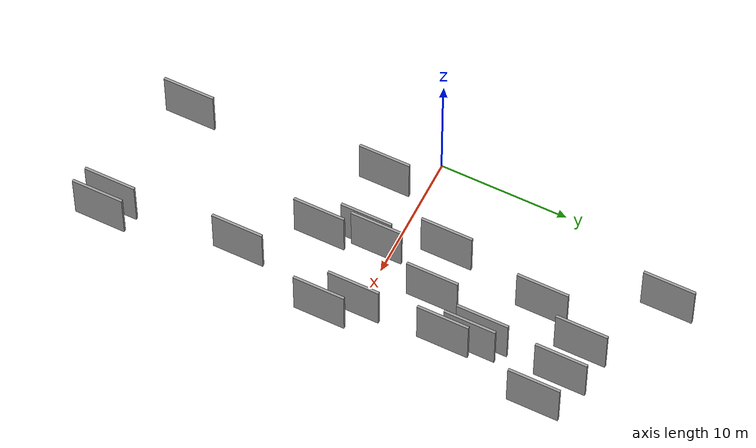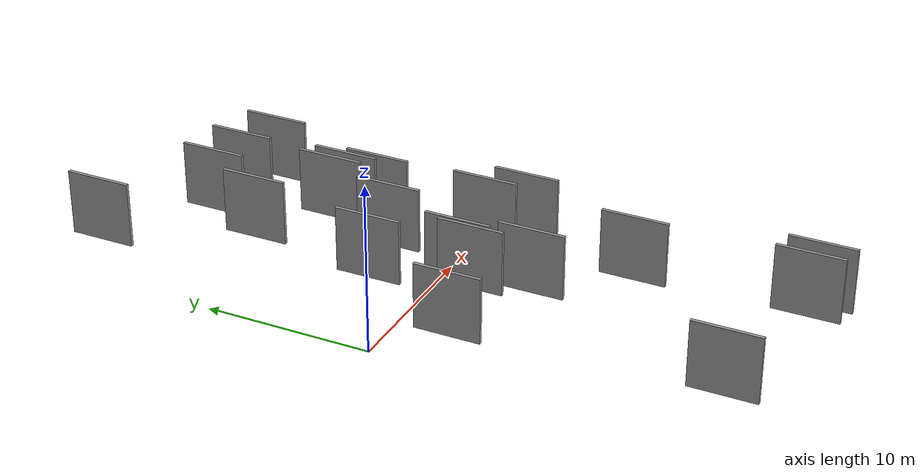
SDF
<sdf version="1.6">
 <world name="default">
  <scene>
   <sky><clouds><speed>12</speed></clouds></sky>
   <ambient>0.4 0.4 0.4 1</ambient>
   <background>0.7 0.7 0.7 1</background>
   <shadows>1</shadows>
  </scene>
  <gravity>0 0 -9.8066</gravity>
  <magnetic_field>6e-06 2.3e-05 -4.2e-05</magnetic_field>
  <physics default="0" name="default_physics" type="ode">
   <ode>
    <solver>
     <type>quick</type>
     <iters>10</iters>
     <sor>1.0</sor>
     <use_dynamic_moi_rescaling>0</use_dynamic_moi_rescaling>
    </solver>
    <constraints>
     <cfm>0</cfm>
     <erp>0.2</erp>
     <contact_max_correcting_vel>100</contact_max_correcting_vel>
     <contact_surface_layer>0.001</contact_surface_layer>
    </constraints>
   </ode>
   <max_step_size>0.004</max_step_size>
   <real_time_factor>1</real_time_factor>
   <real_time_update_rate>250</real_time_update_rate>
  </physics>
  <light name="sun" type="directional">
   <pose>0 0 10 0 0 0</pose>
   <diffuse>0.8 0.8 0.8 1</diffuse>
   <specular>0.2 0.2 0.2 1</specular>
   <attenuation>
    <range>1000</range>
    <constant>0.9</constant>
    <linear>0.01</linear>
    <quadratic>0.001</quadratic>
   </attenuation>
   <direction>-0.5 0.1 -0.9</direction>
  </light>
  <model name="grey_wall_1">
   <static>1</static>
   <pose>15.3730 -2.1959 0.0 0.000000 0.000000 1.570796</pose>
   <link name="link">
    <pose>0 0 2.00 0 0 0</pose>
    <collision name="collision"><geometry><box><size>4.00 0.2 4.00</size></box></geometry></collision>
    <visual name="visual">
     <cast_shadows>0</cast_shadows>
     <geometry><box><size>4.00 0.2 4.00</size></box></geometry>
     <material>
      <script>
       <uri>model://grey_wall/materials/scripts</uri>
       <uri>model://grey_wall/materials/textures</uri>
       <name>vrc/grey_wall</name>
      </script>
     </material>
    </visual>
   </link>
  </model>
  <model name="grey_wall_2">
   <static>1</static>
   <pose>12.3552 9.1286 0.0 0.000000 0.000000 1.570796</pose>
   <link name="link">
    <pose>0 0 2.00 0 0 0</pose>
    <collision name="collision"><geometry><box><size>4.00 0.2 4.00</size></box></geometry></collision>
    <visual name="visual">
     <cast_shadows>0</cast_shadows>
     <geometry><box><size>4.00 0.2 4.00</size></box></geometry>
     <material>
      <script>
       <uri>model://grey_wall/materials/scripts</uri>
       <uri>model://grey_wall/materials/textures</uri>
       <name>vrc/grey_wall</name>
      </script>
     </material>
    </visual>
   </link>
  </model>
  <model name="grey_wall_3">
   <static>1</static>
   <pose>6.9990 3.7475 0.0 0.000000 0.000000 1.570796</pose>
   <link name="link">
    <pose>0 0 2.00 0 0 0</pose>
    <collision name="collision"><geometry><box><size>4.00 0.2 4.00</size></box></geometry></collision>
    <visual name="visual">
     <cast_shadows>0</cast_shadows>
     <geometry><box><size>4.00 0.2 4.00</size></box></geometry>
     <material>
      <script>
       <uri>model://grey_wall/materials/scripts</uri>
       <uri>model://grey_wall/materials/textures</uri>
       <name>vrc/grey_wall</name>
      </script>
     </material>
    </visual>
   </link>
  </model>
  <model name="grey_wall_4">
   <static>1</static>
   <pose>8.1874 11.8255 0.0 0.000000 0.000000 1.570796</pose>
   <link name="link">
    <pose>0 0 2.00 0 0 0</pose>
    <collision name="collision"><geometry><box><size>4.00 0.2 4.00</size></box></geometry></collision>
    <visual name="visual">
     <cast_shadows>0</cast_shadows>
     <geometry><box><size>4.00 0.2 4.00</size></box></geometry>
     <material>
      <script>
       <uri>model://grey_wall/materials/scripts</uri>
       <uri>model://grey_wall/materials/textures</uri>
       <name>vrc/grey_wall</name>
      </script>
     </material>
    </visual>
   </link>
  </model>
  <model name="grey_wall_5">
   <static>1</static>
   <pose>4.0295 19.7095 0.0 0.000000 0.000000 1.570796</pose>
   <link name="link">
    <pose>0 0 2.00 0 0 0</pose>
    <collision name="collision"><geometry><box><size>4.00 0.2 4.00</size></box></geometry></collision>
    <visual name="visual">
     <cast_shadows>0</cast_shadows>
     <geometry><box><size>4.00 0.2 4.00</size></box></geometry>
     <material>
      <script>
       <uri>model://grey_wall/materials/scripts</uri>
       <uri>model://grey_wall/materials/textures</uri>
       <name>vrc/grey_wall</name>
      </script>
     </material>
    </visual>
   </link>
  </model>
  <model name="grey_wall_6">
   <static>1</static>
   <pose>13.8644 -19.7052 0.0 0.000000 0.000000 1.570796</pose>
   <link name="link">
    <pose>0 0 2.00 0 0 0</pose>
    <collision name="collision"><geometry><box><size>4.00 0.2 4.00</size></box></geometry></collision>
    <visual name="visual">
     <cast_shadows>0</cast_shadows>
     <geometry><box><size>4.00 0.2 4.00</size></box></geometry>
     <material>
      <script>
       <uri>model://grey_wall/materials/scripts</uri>
       <uri>model://grey_wall/materials/textures</uri>
       <name>vrc/grey_wall</name>
      </script>
     </material>
    </visual>
   </link>
  </model>
  <model name="grey_wall_7">
   <static>1</static>
   <pose>15.4453 14.5650 0.0 0.000000 0.000000 1.570796</pose>
   <link name="link">
    <pose>0 0 2.00 0 0 0</pose>
    <collision name="collision"><geometry><box><size>4.00 0.2 4.00</size></box></geometry></collision>
    <visual name="visual">
     <cast_shadows>0</cast_shadows>
     <geometry><box><size>4.00 0.2 4.00</size></box></geometry>
     <material>
      <script>
       <uri>model://grey_wall/materials/scripts</uri>
       <uri>model://grey_wall/materials/textures</uri>
       <name>vrc/grey_wall</name>
      </script>
     </material>
    </visual>
   </link>
  </model>
  <model name="grey_wall_8">
   <static>1</static>
   <pose>12.7663 15.3997 0.0 0.000000 0.000000 1.570796</pose>
   <link name="link">
    <pose>0 0 2.00 0 0 0</pose>
    <collision name="collision"><geometry><box><size>4.00 0.2 4.00</size></box></geometry></collision>
    <visual name="visual">
     <cast_shadows>0</cast_shadows>
     <geometry><box><size>4.00 0.2 4.00</size></box></geometry>
     <material>
      <script>
       <uri>model://grey_wall/materials/scripts</uri>
       <uri>model://grey_wall/materials/textures</uri>
       <name>vrc/grey_wall</name>
      </script>
     </material>
    </visual>
   </link>
  </model>
  <model name="grey_wall_9">
   <static>1</static>
   <pose>9.5190 -5.1377 0.0 0.000000 0.000000 1.570796</pose>
   <link name="link">
    <pose>0 0 2.00 0 0 0</pose>
    <collision name="collision"><geometry><box><size>4.00 0.2 4.00</size></box></geometry></collision>
    <visual name="visual">
     <cast_shadows>0</cast_shadows>
     <geometry><box><size>4.00 0.2 4.00</size></box></geometry>
     <material>
      <script>
       <uri>model://grey_wall/materials/scripts</uri>
       <uri>model://grey_wall/materials/textures</uri>
       <name>vrc/grey_wall</name>
      </script>
     </material>
    </visual>
   </link>
  </model>
  <model name="grey_wall_10">
   <static>1</static>
   <pose>15.1776 -19.9972 0.0 0.000000 0.000000 1.570796</pose>
   <link name="link">
    <pose>0 0 2.00 0 0 0</pose>
    <collision name="collision"><geometry><box><size>4.00 0.2 4.00</size></box></geometry></collision>
    <visual name="visual">
     <cast_shadows>0</cast_shadows>
     <geometry><box><size>4.00 0.2 4.00</size></box></geometry>
     <material>
      <script>
       <uri>model://grey_wall/materials/scripts</uri>
       <uri>model://grey_wall/materials/textures</uri>
       <name>vrc/grey_wall</name>
      </script>
     </material>
    </visual>
   </link>
  </model>
  <model name="grey_wall_11">
   <static>1</static>
   <pose>8.7654 -0.9453 0.0 0.000000 0.000000 1.570796</pose>
   <link name="link">
    <pose>0 0 2.00 0 0 0</pose>
    <collision name="collision"><geometry><box><size>4.00 0.2 4.00</size></box></geometry></collision>
    <visual name="visual">
     <cast_shadows>0</cast_shadows>
     <geometry><box><size>4.00 0.2 4.00</size></box></geometry>
     <material>
      <script>
       <uri>model://grey_wall/materials/scripts</uri>
       <uri>model://grey_wall/materials/textures</uri>
       <name>vrc/grey_wall</name>
      </script>
     </material>
    </visual>
   </link>
  </model>
  <model name="grey_wall_12">
   <static>1</static>
   <pose>8.4358 -1.9177 0.0 0.000000 0.000000 1.570796</pose>
   <link name="link">
    <pose>0 0 2.00 0 0 0</pose>
    <collision name="collision"><geometry><box><size>4.00 0.2 4.00</size></box></geometry></collision>
    <visual name="visual">
     <cast_shadows>0</cast_shadows>
     <geometry><box><size>4.00 0.2 4.00</size></box></geometry>
     <material>
      <script>
       <uri>model://grey_wall/materials/scripts</uri>
       <uri>model://grey_wall/materials/textures</uri>
       <name>vrc/grey_wall</name>
      </script>
     </material>
    </visual>
   </link>
  </model>
  <model name="grey_wall_13">
   <static>1</static>
   <pose>3.3746 -2.9885 0.0 0.000000 0.000000 1.570796</pose>
   <link name="link">
    <pose>0 0 2.00 0 0 0</pose>
    <collision name="collision"><geometry><box><size>4.00 0.2 4.00</size></box></geometry></collision>
    <visual name="visual">
     <cast_shadows>0</cast_shadows>
     <geometry><box><size>4.00 0.2 4.00</size></box></geometry>
     <material>
      <script>
       <uri>model://grey_wall/materials/scripts</uri>
       <uri>model://grey_wall/materials/textures</uri>
       <name>vrc/grey_wall</name>
      </script>
     </material>
    </visual>
   </link>
  </model>
  <model name="grey_wall_14">
   <static>1</static>
   <pose>4.4813 -18.2755 0.0 0.000000 0.000000 1.570796</pose>
   <link name="link">
    <pose>0 0 2.00 0 0 0</pose>
    <collision name="collision"><geometry><box><size>4.00 0.2 4.00</size></box></geometry></collision>
    <visual name="visual">
     <cast_shadows>0</cast_shadows>
     <geometry><box><size>4.00 0.2 4.00</size></box></geometry>
     <material>
      <script>
       <uri>model://grey_wall/materials/scripts</uri>
       <uri>model://grey_wall/materials/textures</uri>
       <name>vrc/grey_wall</name>
      </script>
     </material>
    </visual>
   </link>
  </model>
  <model name="grey_wall_15">
   <static>1</static>
   <pose>10.7857 4.4515 0.0 0.000000 0.000000 1.570796</pose>
   <link name="link">
    <pose>0 0 2.00 0 0 0</pose>
    <collision name="collision"><geometry><box><size>4.00 0.2 4.00</size></box></geometry></collision>
    <visual name="visual">
     <cast_shadows>0</cast_shadows>
     <geometry><box><size>4.00 0.2 4.00</size></box></geometry>
     <material>
      <script>
       <uri>model://grey_wall/materials/scripts</uri>
       <uri>model://grey_wall/materials/textures</uri>
       <name>vrc/grey_wall</name>
      </script>
     </material>
    </visual>
   </link>
  </model>
  <model name="grey_wall_16">
   <static>1</static>
   <pose>13.3437 -9.7232 0.0 0.000000 0.000000 1.570796</pose>
   <link name="link">
    <pose>0 0 2.00 0 0 0</pose>
    <collision name="collision"><geometry><box><size>4.00 0.2 4.00</size></box></geometry></collision>
    <visual name="visual">
     <cast_shadows>0</cast_shadows>
     <geometry><box><size>4.00 0.2 4.00</size></box></geometry>
     <material>
      <script>
       <uri>model://grey_wall/materials/scripts</uri>
       <uri>model://grey_wall/materials/textures</uri>
       <name>vrc/grey_wall</name>
      </script>
     </material>
    </visual>
   </link>
  </model>
  <model name="grey_wall_17">
   <static>1</static>
   <pose>13.1676 8.5301 0.0 0.000000 0.000000 1.570796</pose>
   <link name="link">
    <pose>0 0 2.00 0 0 0</pose>
    <collision name="collision"><geometry><box><size>4.00 0.2 4.00</size></box></geometry></collision>
    <visual name="visual">
     <cast_shadows>0</cast_shadows>
     <geometry><box><size>4.00 0.2 4.00</size></box></geometry>
     <material>
      <script>
       <uri>model://grey_wall/materials/scripts</uri>
       <uri>model://grey_wall/materials/textures</uri>
       <name>vrc/grey_wall</name>
      </script>
     </material>
    </visual>
   </link>
  </model>
  <model name="grey_wall_18">
   <static>1</static>
   <pose>10.0527 15.7108 0.0 0.000000 0.000000 1.570796</pose>
   <link name="link">
    <pose>0 0 2.00 0 0 0</pose>
    <collision name="collision"><geometry><box><size>4.00 0.2 4.00</size></box></geometry></collision>
    <visual name="visual">
     <cast_shadows>0</cast_shadows>
     <geometry><box><size>4.00 0.2 4.00</size></box></geometry>
     <material>
      <script>
       <uri>model://grey_wall/materials/scripts</uri>
       <uri>model://grey_wall/materials/textures</uri>
       <name>vrc/grey_wall</name>
      </script>
     </material>
    </visual>
   </link>
  </model>
  <model name="grey_wall_19">
   <static>1</static>
   <pose>13.9114 -0.2056 0.0 0.000000 0.000000 1.570796</pose>
   <link name="link">
    <pose>0 0 2.00 0 0 0</pose>
    <collision name="collision"><geometry><box><size>4.00 0.2 4.00</size></box></geometry></collision>
    <visual name="visual">
     <cast_shadows>0</cast_shadows>
     <geometry><box><size>4.00 0.2 4.00</size></box></geometry>
     <material>
      <script>
       <uri>model://grey_wall/materials/scripts</uri>
       <uri>model://grey_wall/materials/textures</uri>
       <name>vrc/grey_wall</name>
      </script>
     </material>
    </visual>
   </link>
  </model>
  <model name="grey_wall_20">
   <static>1</static>
   <pose>13.6611 6.6818 0.0 0.000000 0.000000 1.570796</pose>
   <link name="link">
    <pose>0 0 2.00 0 0 0</pose>
    <collision name="collision"><geometry><box><size>4.00 0.2 4.00</size></box></geometry></collision>
    <visual name="visual">
     <cast_shadows>0</cast_shadows>
     <geometry><box><size>4.00 0.2 4.00</size></box></geometry>
     <material>
      <script>
       <uri>model://grey_wall/materials/scripts</uri>
       <uri>model://grey_wall/materials/textures</uri>
       <name>vrc/grey_wall</name>
      </script>
     </material>
    </visual>
   </link>
  </model>
 </world>
</sdf>
